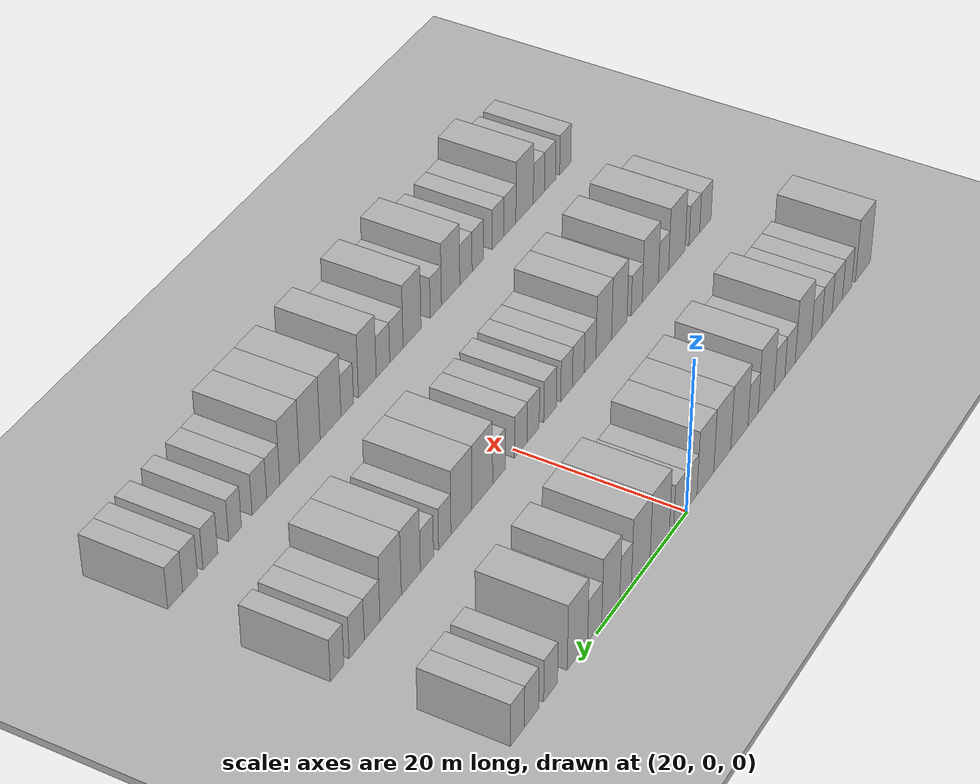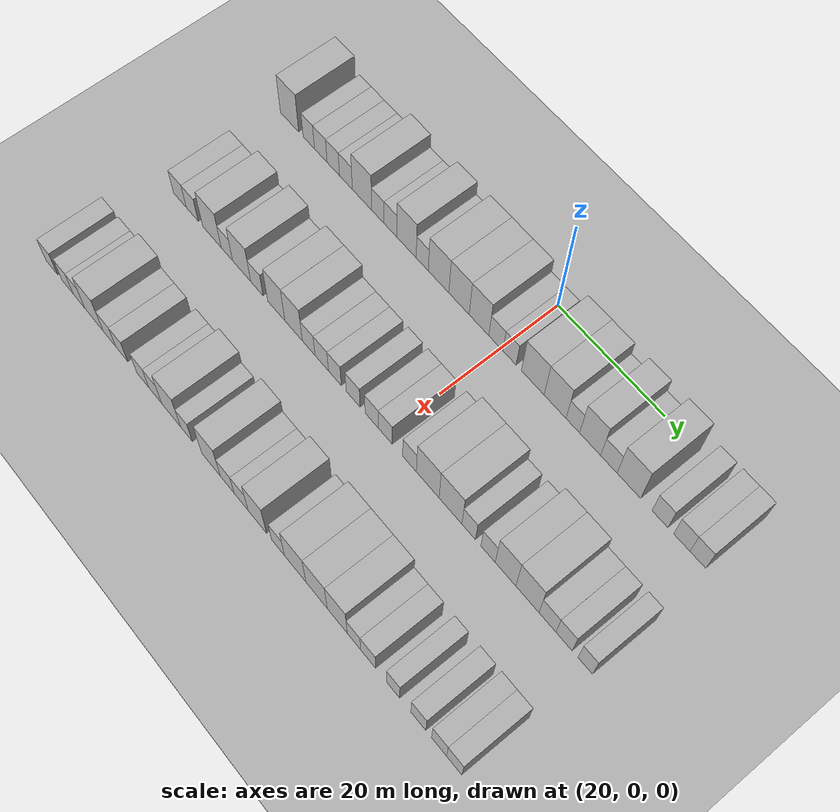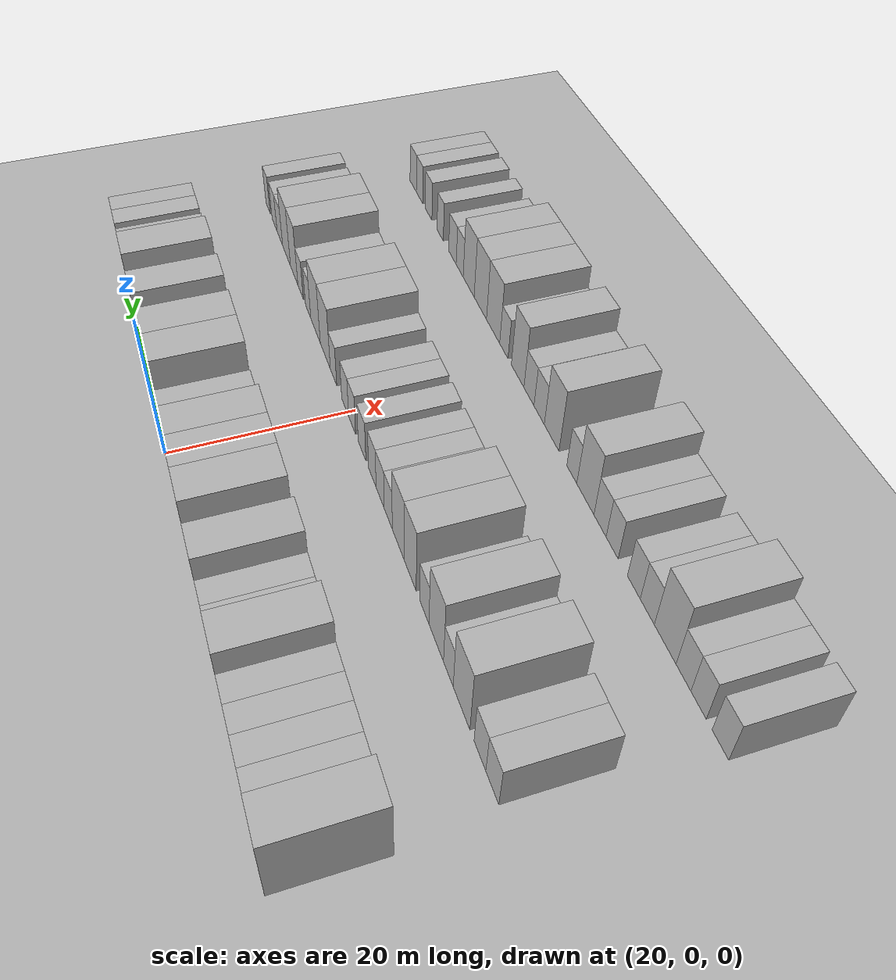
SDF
<sdf version="1.6">
 <world name="default">
  <include><name>ground_plane_1</name><uri>model://HANNAS_ground_plane</uri></include>
  <include>
   <name>ground_plane_2</name>
   <uri>model://HANNAS_ground_plane</uri>
   <pose>100 0 0  0 0 0</pose>
  </include>
  <model name="building_50">
   <static>1</static>
   <pose>25.0000 -44.3049 0 0.000000 0.000000 0.000000</pose>
   <link name="link">
    <pose>0 0 4.50 0 0 0</pose>
    <collision name="collision"><geometry><box><size>10.0000 4.1583 9.0000</size></box></geometry></collision>
    <visual name="visual">
     <cast_shadows>0</cast_shadows>
     <geometry><box><size>10.0000 4.1583 9.0000</size></box></geometry>
     <material>
      <script>
       <uri>model://HANNAS_wall/materials/scripts</uri>
       <uri>model://HANNAS_wall/materials/textures</uri>
       <name>vrc/HANNAS_wall</name>
      </script>
     </material>
    </visual>
   </link>
  </model>
  <model name="building_51">
   <static>1</static>
   <pose>25.0000 -39.9633 0 0.000000 0.000000 0.000000</pose>
   <link name="link">
    <pose>0 0 3.00 0 0 0</pose>
    <collision name="collision"><geometry><box><size>10.0000 2.5249 6.0000</size></box></geometry></collision>
    <visual name="visual">
     <cast_shadows>0</cast_shadows>
     <geometry><box><size>10.0000 2.5249 6.0000</size></box></geometry>
     <material>
      <script>
       <uri>model://HANNAS_wall/materials/scripts</uri>
       <uri>model://HANNAS_wall/materials/textures</uri>
       <name>vrc/HANNAS_wall</name>
      </script>
     </material>
    </visual>
   </link>
  </model>
  <model name="building_52">
   <static>1</static>
   <pose>25.0000 -37.3032 0 0.000000 0.000000 0.000000</pose>
   <link name="link">
    <pose>0 0 3.00 0 0 0</pose>
    <collision name="collision"><geometry><box><size>10.0000 2.7953 6.0000</size></box></geometry></collision>
    <visual name="visual">
     <cast_shadows>0</cast_shadows>
     <geometry><box><size>10.0000 2.7953 6.0000</size></box></geometry>
     <material>
      <script>
       <uri>model://HANNAS_wall/materials/scripts</uri>
       <uri>model://HANNAS_wall/materials/textures</uri>
       <name>vrc/HANNAS_wall</name>
      </script>
     </material>
    </visual>
   </link>
  </model>
  <model name="building_53">
   <static>1</static>
   <pose>25.0000 -34.5384 0 0.000000 0.000000 0.000000</pose>
   <link name="link">
    <pose>0 0 3.00 0 0 0</pose>
    <collision name="collision"><geometry><box><size>10.0000 2.7344 6.0000</size></box></geometry></collision>
    <visual name="visual">
     <cast_shadows>0</cast_shadows>
     <geometry><box><size>10.0000 2.7344 6.0000</size></box></geometry>
     <material>
      <script>
       <uri>model://HANNAS_wall/materials/scripts</uri>
       <uri>model://HANNAS_wall/materials/textures</uri>
       <name>vrc/HANNAS_wall</name>
      </script>
     </material>
    </visual>
   </link>
  </model>
  <model name="building_54">
   <static>1</static>
   <pose>25.0000 -31.7763 0 0.000000 0.000000 0.000000</pose>
   <link name="link">
    <pose>0 0 3.00 0 0 0</pose>
    <collision name="collision"><geometry><box><size>10.0000 2.7899 6.0000</size></box></geometry></collision>
    <visual name="visual">
     <cast_shadows>0</cast_shadows>
     <geometry><box><size>10.0000 2.7899 6.0000</size></box></geometry>
     <material>
      <script>
       <uri>model://HANNAS_wall/materials/scripts</uri>
       <uri>model://HANNAS_wall/materials/textures</uri>
       <name>vrc/HANNAS_wall</name>
      </script>
     </material>
    </visual>
   </link>
  </model>
  <model name="building_55">
   <static>1</static>
   <pose>25.0000 -28.2948 0 0.000000 0.000000 0.000000</pose>
   <link name="link">
    <pose>0 0 4.50 0 0 0</pose>
    <collision name="collision"><geometry><box><size>10.0000 4.1730 9.0000</size></box></geometry></collision>
    <visual name="visual">
     <cast_shadows>0</cast_shadows>
     <geometry><box><size>10.0000 4.1730 9.0000</size></box></geometry>
     <material>
      <script>
       <uri>model://HANNAS_wall/materials/scripts</uri>
       <uri>model://HANNAS_wall/materials/textures</uri>
       <name>vrc/HANNAS_wall</name>
      </script>
     </material>
    </visual>
   </link>
  </model>
  <model name="building_56">
   <static>1</static>
   <pose>25.0000 -24.8899 0 0.000000 0.000000 0.000000</pose>
   <link name="link">
    <pose>0 0 3.00 0 0 0</pose>
    <collision name="collision"><geometry><box><size>10.0000 2.6368 6.0000</size></box></geometry></collision>
    <visual name="visual">
     <cast_shadows>0</cast_shadows>
     <geometry><box><size>10.0000 2.6368 6.0000</size></box></geometry>
     <material>
      <script>
       <uri>model://HANNAS_wall/materials/scripts</uri>
       <uri>model://HANNAS_wall/materials/textures</uri>
       <name>vrc/HANNAS_wall</name>
      </script>
     </material>
    </visual>
   </link>
  </model>
  <model name="building_57">
   <static>1</static>
   <pose>25.0000 -22.2199 0 0.000000 0.000000 0.000000</pose>
   <link name="link">
    <pose>0 0 3.00 0 0 0</pose>
    <collision name="collision"><geometry><box><size>10.0000 2.7033 6.0000</size></box></geometry></collision>
    <visual name="visual">
     <cast_shadows>0</cast_shadows>
     <geometry><box><size>10.0000 2.7033 6.0000</size></box></geometry>
     <material>
      <script>
       <uri>model://HANNAS_wall/materials/scripts</uri>
       <uri>model://HANNAS_wall/materials/textures</uri>
       <name>vrc/HANNAS_wall</name>
      </script>
     </material>
    </visual>
   </link>
  </model>
  <model name="building_58">
   <static>1</static>
   <pose>25.0000 -18.8673 0 0.000000 0.000000 0.000000</pose>
   <link name="link">
    <pose>0 0 4.50 0 0 0</pose>
    <collision name="collision"><geometry><box><size>10.0000 4.0019 9.0000</size></box></geometry></collision>
    <visual name="visual">
     <cast_shadows>0</cast_shadows>
     <geometry><box><size>10.0000 4.0019 9.0000</size></box></geometry>
     <material>
      <script>
       <uri>model://HANNAS_wall/materials/scripts</uri>
       <uri>model://HANNAS_wall/materials/textures</uri>
       <name>vrc/HANNAS_wall</name>
      </script>
     </material>
    </visual>
   </link>
  </model>
  <model name="building_59">
   <static>1</static>
   <pose>25.0000 -15.6227 0 0.000000 0.000000 0.000000</pose>
   <link name="link">
    <pose>0 0 3.00 0 0 0</pose>
    <collision name="collision"><geometry><box><size>10.0000 2.4872 6.0000</size></box></geometry></collision>
    <visual name="visual">
     <cast_shadows>0</cast_shadows>
     <geometry><box><size>10.0000 2.4872 6.0000</size></box></geometry>
     <material>
      <script>
       <uri>model://HANNAS_wall/materials/scripts</uri>
       <uri>model://HANNAS_wall/materials/textures</uri>
       <name>vrc/HANNAS_wall</name>
      </script>
     </material>
    </visual>
   </link>
  </model>
  <model name="building_60">
   <static>1</static>
   <pose>25.0000 -12.2853 0 0.000000 0.000000 0.000000</pose>
   <link name="link">
    <pose>0 0 4.50 0 0 0</pose>
    <collision name="collision"><geometry><box><size>10.0000 4.1877 9.0000</size></box></geometry></collision>
    <visual name="visual">
     <cast_shadows>0</cast_shadows>
     <geometry><box><size>10.0000 4.1877 9.0000</size></box></geometry>
     <material>
      <script>
       <uri>model://HANNAS_wall/materials/scripts</uri>
       <uri>model://HANNAS_wall/materials/textures</uri>
       <name>vrc/HANNAS_wall</name>
      </script>
     </material>
    </visual>
   </link>
  </model>
  <model name="building_61">
   <static>1</static>
   <pose>25.0000 -8.1535 0 0.000000 0.000000 0.000000</pose>
   <link name="link">
    <pose>0 0 4.50 0 0 0</pose>
    <collision name="collision"><geometry><box><size>10.0000 4.0758 9.0000</size></box></geometry></collision>
    <visual name="visual">
     <cast_shadows>0</cast_shadows>
     <geometry><box><size>10.0000 4.0758 9.0000</size></box></geometry>
     <material>
      <script>
       <uri>model://HANNAS_wall/materials/scripts</uri>
       <uri>model://HANNAS_wall/materials/textures</uri>
       <name>vrc/HANNAS_wall</name>
      </script>
     </material>
    </visual>
   </link>
  </model>
  <model name="building_62">
   <static>1</static>
   <pose>25.0000 -4.1667 0 0.000000 0.000000 0.000000</pose>
   <link name="link">
    <pose>0 0 4.50 0 0 0</pose>
    <collision name="collision"><geometry><box><size>10.0000 3.8978 9.0000</size></box></geometry></collision>
    <visual name="visual">
     <cast_shadows>0</cast_shadows>
     <geometry><box><size>10.0000 3.8978 9.0000</size></box></geometry>
     <material>
      <script>
       <uri>model://HANNAS_wall/materials/scripts</uri>
       <uri>model://HANNAS_wall/materials/textures</uri>
       <name>vrc/HANNAS_wall</name>
      </script>
     </material>
    </visual>
   </link>
  </model>
  <model name="building_63">
   <static>1</static>
   <pose>25.0000 -0.8375 0 0.000000 0.000000 0.000000</pose>
   <link name="link">
    <pose>0 0 3.00 0 0 0</pose>
    <collision name="collision"><geometry><box><size>10.0000 2.7605 6.0000</size></box></geometry></collision>
    <visual name="visual">
     <cast_shadows>0</cast_shadows>
     <geometry><box><size>10.0000 2.7605 6.0000</size></box></geometry>
     <material>
      <script>
       <uri>model://HANNAS_wall/materials/scripts</uri>
       <uri>model://HANNAS_wall/materials/textures</uri>
       <name>vrc/HANNAS_wall</name>
      </script>
     </material>
    </visual>
   </link>
  </model>
  <model name="building_64">
   <static>1</static>
   <pose>25.0000 1.8266 0 0.000000 0.000000 0.000000</pose>
   <link name="link">
    <pose>0 0 3.00 0 0 0</pose>
    <collision name="collision"><geometry><box><size>10.0000 2.5677 6.0000</size></box></geometry></collision>
    <visual name="visual">
     <cast_shadows>0</cast_shadows>
     <geometry><box><size>10.0000 2.5677 6.0000</size></box></geometry>
     <material>
      <script>
       <uri>model://HANNAS_wall/materials/scripts</uri>
       <uri>model://HANNAS_wall/materials/textures</uri>
       <name>vrc/HANNAS_wall</name>
      </script>
     </material>
    </visual>
   </link>
  </model>
  <model name="building_65">
   <static>1</static>
   <pose>25.0000 6.2710 0 0.000000 0.000000 0.000000</pose>
   <link name="link">
    <pose>0 0 4.50 0 0 0</pose>
    <collision name="collision"><geometry><box><size>10.0000 4.3210 9.0000</size></box></geometry></collision>
    <visual name="visual">
     <cast_shadows>0</cast_shadows>
     <geometry><box><size>10.0000 4.3210 9.0000</size></box></geometry>
     <material>
      <script>
       <uri>model://HANNAS_wall/materials/scripts</uri>
       <uri>model://HANNAS_wall/materials/textures</uri>
       <name>vrc/HANNAS_wall</name>
      </script>
     </material>
    </visual>
   </link>
  </model>
  <model name="building_66">
   <static>1</static>
   <pose>25.0000 10.4872 0 0.000000 0.000000 0.000000</pose>
   <link name="link">
    <pose>0 0 4.50 0 0 0</pose>
    <collision name="collision"><geometry><box><size>10.0000 4.1115 9.0000</size></box></geometry></collision>
    <visual name="visual">
     <cast_shadows>0</cast_shadows>
     <geometry><box><size>10.0000 4.1115 9.0000</size></box></geometry>
     <material>
      <script>
       <uri>model://HANNAS_wall/materials/scripts</uri>
       <uri>model://HANNAS_wall/materials/textures</uri>
       <name>vrc/HANNAS_wall</name>
      </script>
     </material>
    </visual>
   </link>
  </model>
  <model name="building_67">
   <static>1</static>
   <pose>25.0000 13.7948 0 0.000000 0.000000 0.000000</pose>
   <link name="link">
    <pose>0 0 3.00 0 0 0</pose>
    <collision name="collision"><geometry><box><size>10.0000 2.5036 6.0000</size></box></geometry></collision>
    <visual name="visual">
     <cast_shadows>0</cast_shadows>
     <geometry><box><size>10.0000 2.5036 6.0000</size></box></geometry>
     <material>
      <script>
       <uri>model://HANNAS_wall/materials/scripts</uri>
       <uri>model://HANNAS_wall/materials/textures</uri>
       <name>vrc/HANNAS_wall</name>
      </script>
     </material>
    </visual>
   </link>
  </model>
  <model name="building_68">
   <static>1</static>
   <pose>25.0000 16.9805 0 0.000000 0.000000 0.000000</pose>
   <link name="link">
    <pose>0 0 4.50 0 0 0</pose>
    <collision name="collision"><geometry><box><size>10.0000 3.8678 9.0000</size></box></geometry></collision>
    <visual name="visual">
     <cast_shadows>0</cast_shadows>
     <geometry><box><size>10.0000 3.8678 9.0000</size></box></geometry>
     <material>
      <script>
       <uri>model://HANNAS_wall/materials/scripts</uri>
       <uri>model://HANNAS_wall/materials/textures</uri>
       <name>vrc/HANNAS_wall</name>
      </script>
     </material>
    </visual>
   </link>
  </model>
  <model name="building_69">
   <static>1</static>
   <pose>25.0000 20.4038 0 0.000000 0.000000 0.000000</pose>
   <link name="link">
    <pose>0 0 3.00 0 0 0</pose>
    <collision name="collision"><geometry><box><size>10.0000 2.9787 6.0000</size></box></geometry></collision>
    <visual name="visual">
     <cast_shadows>0</cast_shadows>
     <geometry><box><size>10.0000 2.9787 6.0000</size></box></geometry>
     <material>
      <script>
       <uri>model://HANNAS_wall/materials/scripts</uri>
       <uri>model://HANNAS_wall/materials/textures</uri>
       <name>vrc/HANNAS_wall</name>
      </script>
     </material>
    </visual>
   </link>
  </model>
  <model name="building_70">
   <static>1</static>
   <pose>25.0000 24.0017 0 0.000000 0.000000 0.000000</pose>
   <link name="link">
    <pose>0 0 4.50 0 0 0</pose>
    <collision name="collision"><geometry><box><size>10.0000 4.2171 9.0000</size></box></geometry></collision>
    <visual name="visual">
     <cast_shadows>0</cast_shadows>
     <geometry><box><size>10.0000 4.2171 9.0000</size></box></geometry>
     <material>
      <script>
       <uri>model://HANNAS_wall/materials/scripts</uri>
       <uri>model://HANNAS_wall/materials/textures</uri>
       <name>vrc/HANNAS_wall</name>
      </script>
     </material>
    </visual>
   </link>
  </model>
  <model name="building_71">
   <static>1</static>
   <pose>25.0000 29.5007 0 0.000000 0.000000 0.000000</pose>
   <link name="link">
    <pose>0 0 3.00 0 0 0</pose>
    <collision name="collision"><geometry><box><size>10.0000 2.7810 6.0000</size></box></geometry></collision>
    <visual name="visual">
     <cast_shadows>0</cast_shadows>
     <geometry><box><size>10.0000 2.7810 6.0000</size></box></geometry>
     <material>
      <script>
       <uri>model://HANNAS_wall/materials/scripts</uri>
       <uri>model://HANNAS_wall/materials/textures</uri>
       <name>vrc/HANNAS_wall</name>
      </script>
     </material>
    </visual>
   </link>
  </model>
  <model name="building_72">
   <static>1</static>
   <pose>25.0000 33.2955 0 0.000000 0.000000 0.000000</pose>
   <link name="link">
    <pose>0 0 3.00 0 0 0</pose>
    <collision name="collision"><geometry><box><size>10.0000 2.8086 6.0000</size></box></geometry></collision>
    <visual name="visual">
     <cast_shadows>0</cast_shadows>
     <geometry><box><size>10.0000 2.8086 6.0000</size></box></geometry>
     <material>
      <script>
       <uri>model://HANNAS_wall/materials/scripts</uri>
       <uri>model://HANNAS_wall/materials/textures</uri>
       <name>vrc/HANNAS_wall</name>
      </script>
     </material>
    </visual>
   </link>
  </model>
  <model name="building_73">
   <static>1</static>
   <pose>25.0000 36.0505 0 0.000000 0.000000 0.000000</pose>
   <link name="link">
    <pose>0 0 3.00 0 0 0</pose>
    <collision name="collision"><geometry><box><size>10.0000 2.7014 6.0000</size></box></geometry></collision>
    <visual name="visual">
     <cast_shadows>0</cast_shadows>
     <geometry><box><size>10.0000 2.7014 6.0000</size></box></geometry>
     <material>
      <script>
       <uri>model://HANNAS_wall/materials/scripts</uri>
       <uri>model://HANNAS_wall/materials/textures</uri>
       <name>vrc/HANNAS_wall</name>
      </script>
     </material>
    </visual>
   </link>
  </model>
  <model name="building_171">
   <static>1</static>
   <pose>44.0000 -43.5951 0 0.000000 0.000000 0.000000</pose>
   <link name="link">
    <pose>0 0 3.00 0 0 0</pose>
    <collision name="collision"><geometry><box><size>10.0000 2.9325 6.0000</size></box></geometry></collision>
    <visual name="visual">
     <cast_shadows>0</cast_shadows>
     <geometry><box><size>10.0000 2.9325 6.0000</size></box></geometry>
     <material>
      <script>
       <uri>model://HANNAS_wall/materials/scripts</uri>
       <uri>model://HANNAS_wall/materials/textures</uri>
       <name>vrc/HANNAS_wall</name>
      </script>
     </material>
    </visual>
   </link>
  </model>
  <model name="building_172">
   <static>1</static>
   <pose>44.0000 -40.7530 0 0.000000 0.000000 0.000000</pose>
   <link name="link">
    <pose>0 0 3.00 0 0 0</pose>
    <collision name="collision"><geometry><box><size>10.0000 2.7516 6.0000</size></box></geometry></collision>
    <visual name="visual">
     <cast_shadows>0</cast_shadows>
     <geometry><box><size>10.0000 2.7516 6.0000</size></box></geometry>
     <material>
      <script>
       <uri>model://HANNAS_wall/materials/scripts</uri>
       <uri>model://HANNAS_wall/materials/textures</uri>
       <name>vrc/HANNAS_wall</name>
      </script>
     </material>
    </visual>
   </link>
  </model>
  <model name="building_173">
   <static>1</static>
   <pose>44.0000 -36.2952 0 0.000000 0.000000 0.000000</pose>
   <link name="link">
    <pose>0 0 4.50 0 0 0</pose>
    <collision name="collision"><geometry><box><size>10.0000 4.1641 9.0000</size></box></geometry></collision>
    <visual name="visual">
     <cast_shadows>0</cast_shadows>
     <geometry><box><size>10.0000 4.1641 9.0000</size></box></geometry>
     <material>
      <script>
       <uri>model://HANNAS_wall/materials/scripts</uri>
       <uri>model://HANNAS_wall/materials/textures</uri>
       <name>vrc/HANNAS_wall</name>
      </script>
     </material>
    </visual>
   </link>
  </model>
  <model name="building_174">
   <static>1</static>
   <pose>44.0000 -32.9400 0 0.000000 0.000000 0.000000</pose>
   <link name="link">
    <pose>0 0 3.00 0 0 0</pose>
    <collision name="collision"><geometry><box><size>10.0000 2.5464 6.0000</size></box></geometry></collision>
    <visual name="visual">
     <cast_shadows>0</cast_shadows>
     <geometry><box><size>10.0000 2.5464 6.0000</size></box></geometry>
     <material>
      <script>
       <uri>model://HANNAS_wall/materials/scripts</uri>
       <uri>model://HANNAS_wall/materials/textures</uri>
       <name>vrc/HANNAS_wall</name>
      </script>
     </material>
    </visual>
   </link>
  </model>
  <model name="building_175">
   <static>1</static>
   <pose>44.0000 -29.6785 0 0.000000 0.000000 0.000000</pose>
   <link name="link">
    <pose>0 0 4.50 0 0 0</pose>
    <collision name="collision"><geometry><box><size>10.0000 3.9766 9.0000</size></box></geometry></collision>
    <visual name="visual">
     <cast_shadows>0</cast_shadows>
     <geometry><box><size>10.0000 3.9766 9.0000</size></box></geometry>
     <material>
      <script>
       <uri>model://HANNAS_wall/materials/scripts</uri>
       <uri>model://HANNAS_wall/materials/textures</uri>
       <name>vrc/HANNAS_wall</name>
      </script>
     </material>
    </visual>
   </link>
  </model>
  <model name="building_176">
   <static>1</static>
   <pose>44.0000 -26.3455 0 0.000000 0.000000 0.000000</pose>
   <link name="link">
    <pose>0 0 3.00 0 0 0</pose>
    <collision name="collision"><geometry><box><size>10.0000 2.6892 6.0000</size></box></geometry></collision>
    <visual name="visual">
     <cast_shadows>0</cast_shadows>
     <geometry><box><size>10.0000 2.6892 6.0000</size></box></geometry>
     <material>
      <script>
       <uri>model://HANNAS_wall/materials/scripts</uri>
       <uri>model://HANNAS_wall/materials/textures</uri>
       <name>vrc/HANNAS_wall</name>
      </script>
     </material>
    </visual>
   </link>
  </model>
  <model name="building_177">
   <static>1</static>
   <pose>44.0000 -22.1660 0 0.000000 0.000000 0.000000</pose>
   <link name="link">
    <pose>0 0 4.50 0 0 0</pose>
    <collision name="collision"><geometry><box><size>10.0000 3.6700 9.0000</size></box></geometry></collision>
    <visual name="visual">
     <cast_shadows>0</cast_shadows>
     <geometry><box><size>10.0000 3.6700 9.0000</size></box></geometry>
     <material>
      <script>
       <uri>model://HANNAS_wall/materials/scripts</uri>
       <uri>model://HANNAS_wall/materials/textures</uri>
       <name>vrc/HANNAS_wall</name>
      </script>
     </material>
    </visual>
   </link>
  </model>
  <model name="building_178">
   <static>1</static>
   <pose>44.0000 -18.4888 0 0.000000 0.000000 0.000000</pose>
   <link name="link">
    <pose>0 0 4.50 0 0 0</pose>
    <collision name="collision"><geometry><box><size>10.0000 3.6843 9.0000</size></box></geometry></collision>
    <visual name="visual">
     <cast_shadows>0</cast_shadows>
     <geometry><box><size>10.0000 3.6843 9.0000</size></box></geometry>
     <material>
      <script>
       <uri>model://HANNAS_wall/materials/scripts</uri>
       <uri>model://HANNAS_wall/materials/textures</uri>
       <name>vrc/HANNAS_wall</name>
      </script>
     </material>
    </visual>
   </link>
  </model>
  <model name="building_179">
   <static>1</static>
   <pose>44.0000 -15.3180 0 0.000000 0.000000 0.000000</pose>
   <link name="link">
    <pose>0 0 3.00 0 0 0</pose>
    <collision name="collision"><geometry><box><size>10.0000 2.6574 6.0000</size></box></geometry></collision>
    <visual name="visual">
     <cast_shadows>0</cast_shadows>
     <geometry><box><size>10.0000 2.6574 6.0000</size></box></geometry>
     <material>
      <script>
       <uri>model://HANNAS_wall/materials/scripts</uri>
       <uri>model://HANNAS_wall/materials/textures</uri>
       <name>vrc/HANNAS_wall</name>
      </script>
     </material>
    </visual>
   </link>
  </model>
  <model name="building_180">
   <static>1</static>
   <pose>44.0000 -12.6058 0 0.000000 0.000000 0.000000</pose>
   <link name="link">
    <pose>0 0 3.00 0 0 0</pose>
    <collision name="collision"><geometry><box><size>10.0000 2.7672 6.0000</size></box></geometry></collision>
    <visual name="visual">
     <cast_shadows>0</cast_shadows>
     <geometry><box><size>10.0000 2.7672 6.0000</size></box></geometry>
     <material>
      <script>
       <uri>model://HANNAS_wall/materials/scripts</uri>
       <uri>model://HANNAS_wall/materials/textures</uri>
       <name>vrc/HANNAS_wall</name>
      </script>
     </material>
    </visual>
   </link>
  </model>
  <model name="building_181">
   <static>1</static>
   <pose>44.0000 -9.9080 0 0.000000 0.000000 0.000000</pose>
   <link name="link">
    <pose>0 0 3.00 0 0 0</pose>
    <collision name="collision"><geometry><box><size>10.0000 2.6282 6.0000</size></box></geometry></collision>
    <visual name="visual">
     <cast_shadows>0</cast_shadows>
     <geometry><box><size>10.0000 2.6282 6.0000</size></box></geometry>
     <material>
      <script>
       <uri>model://HANNAS_wall/materials/scripts</uri>
       <uri>model://HANNAS_wall/materials/textures</uri>
       <name>vrc/HANNAS_wall</name>
      </script>
     </material>
    </visual>
   </link>
  </model>
  <model name="building_182">
   <static>1</static>
   <pose>44.0000 -6.1871 0 0.000000 0.000000 0.000000</pose>
   <link name="link">
    <pose>0 0 3.00 0 0 0</pose>
    <collision name="collision"><geometry><box><size>10.0000 2.8137 6.0000</size></box></geometry></collision>
    <visual name="visual">
     <cast_shadows>0</cast_shadows>
     <geometry><box><size>10.0000 2.8137 6.0000</size></box></geometry>
     <material>
      <script>
       <uri>model://HANNAS_wall/materials/scripts</uri>
       <uri>model://HANNAS_wall/materials/textures</uri>
       <name>vrc/HANNAS_wall</name>
      </script>
     </material>
    </visual>
   </link>
  </model>
  <model name="building_183">
   <static>1</static>
   <pose>44.0000 -2.4601 0 0.000000 0.000000 0.000000</pose>
   <link name="link">
    <pose>0 0 3.00 0 0 0</pose>
    <collision name="collision"><geometry><box><size>10.0000 2.6402 6.0000</size></box></geometry></collision>
    <visual name="visual">
     <cast_shadows>0</cast_shadows>
     <geometry><box><size>10.0000 2.6402 6.0000</size></box></geometry>
     <material>
      <script>
       <uri>model://HANNAS_wall/materials/scripts</uri>
       <uri>model://HANNAS_wall/materials/textures</uri>
       <name>vrc/HANNAS_wall</name>
      </script>
     </material>
    </visual>
   </link>
  </model>
  <model name="building_184">
   <static>1</static>
   <pose>44.0000 0.2383 0 0.000000 0.000000 0.000000</pose>
   <link name="link">
    <pose>0 0 3.00 0 0 0</pose>
    <collision name="collision"><geometry><box><size>10.0000 2.7567 6.0000</size></box></geometry></collision>
    <visual name="visual">
     <cast_shadows>0</cast_shadows>
     <geometry><box><size>10.0000 2.7567 6.0000</size></box></geometry>
     <material>
      <script>
       <uri>model://HANNAS_wall/materials/scripts</uri>
       <uri>model://HANNAS_wall/materials/textures</uri>
       <name>vrc/HANNAS_wall</name>
      </script>
     </material>
    </visual>
   </link>
  </model>
  <model name="building_185">
   <static>1</static>
   <pose>44.0000 4.9537 0 0.000000 0.000000 0.000000</pose>
   <link name="link">
    <pose>0 0 3.00 0 0 0</pose>
    <collision name="collision"><geometry><box><size>10.0000 2.6740 6.0000</size></box></geometry></collision>
    <visual name="visual">
     <cast_shadows>0</cast_shadows>
     <geometry><box><size>10.0000 2.6740 6.0000</size></box></geometry>
     <material>
      <script>
       <uri>model://HANNAS_wall/materials/scripts</uri>
       <uri>model://HANNAS_wall/materials/textures</uri>
       <name>vrc/HANNAS_wall</name>
      </script>
     </material>
    </visual>
   </link>
  </model>
  <model name="building_186">
   <static>1</static>
   <pose>44.0000 8.4610 0 0.000000 0.000000 0.000000</pose>
   <link name="link">
    <pose>0 0 4.50 0 0 0</pose>
    <collision name="collision"><geometry><box><size>10.0000 4.3406 9.0000</size></box></geometry></collision>
    <visual name="visual">
     <cast_shadows>0</cast_shadows>
     <geometry><box><size>10.0000 4.3406 9.0000</size></box></geometry>
     <material>
      <script>
       <uri>model://HANNAS_wall/materials/scripts</uri>
       <uri>model://HANNAS_wall/materials/textures</uri>
       <name>vrc/HANNAS_wall</name>
      </script>
     </material>
    </visual>
   </link>
  </model>
  <model name="building_187">
   <static>1</static>
   <pose>44.0000 12.7765 0 0.000000 0.000000 0.000000</pose>
   <link name="link">
    <pose>0 0 4.50 0 0 0</pose>
    <collision name="collision"><geometry><box><size>10.0000 4.2903 9.0000</size></box></geometry></collision>
    <visual name="visual">
     <cast_shadows>0</cast_shadows>
     <geometry><box><size>10.0000 4.2903 9.0000</size></box></geometry>
     <material>
      <script>
       <uri>model://HANNAS_wall/materials/scripts</uri>
       <uri>model://HANNAS_wall/materials/textures</uri>
       <name>vrc/HANNAS_wall</name>
      </script>
     </material>
    </visual>
   </link>
  </model>
  <model name="building_188">
   <static>1</static>
   <pose>44.0000 16.1845 0 0.000000 0.000000 0.000000</pose>
   <link name="link">
    <pose>0 0 3.00 0 0 0</pose>
    <collision name="collision"><geometry><box><size>10.0000 2.5258 6.0000</size></box></geometry></collision>
    <visual name="visual">
     <cast_shadows>0</cast_shadows>
     <geometry><box><size>10.0000 2.5258 6.0000</size></box></geometry>
     <material>
      <script>
       <uri>model://HANNAS_wall/materials/scripts</uri>
       <uri>model://HANNAS_wall/materials/textures</uri>
       <name>vrc/HANNAS_wall</name>
      </script>
     </material>
    </visual>
   </link>
  </model>
  <model name="building_189">
   <static>1</static>
   <pose>44.0000 19.7641 0 0.000000 0.000000 0.000000</pose>
   <link name="link">
    <pose>0 0 3.00 0 0 0</pose>
    <collision name="collision"><geometry><box><size>10.0000 2.6333 6.0000</size></box></geometry></collision>
    <visual name="visual">
     <cast_shadows>0</cast_shadows>
     <geometry><box><size>10.0000 2.6333 6.0000</size></box></geometry>
     <material>
      <script>
       <uri>model://HANNAS_wall/materials/scripts</uri>
       <uri>model://HANNAS_wall/materials/textures</uri>
       <name>vrc/HANNAS_wall</name>
      </script>
     </material>
    </visual>
   </link>
  </model>
  <model name="building_190">
   <static>1</static>
   <pose>44.0000 22.9483 0 0.000000 0.000000 0.000000</pose>
   <link name="link">
    <pose>0 0 4.50 0 0 0</pose>
    <collision name="collision"><geometry><box><size>10.0000 3.7351 9.0000</size></box></geometry></collision>
    <visual name="visual">
     <cast_shadows>0</cast_shadows>
     <geometry><box><size>10.0000 3.7351 9.0000</size></box></geometry>
     <material>
      <script>
       <uri>model://HANNAS_wall/materials/scripts</uri>
       <uri>model://HANNAS_wall/materials/textures</uri>
       <name>vrc/HANNAS_wall</name>
      </script>
     </material>
    </visual>
   </link>
  </model>
  <model name="building_191">
   <static>1</static>
   <pose>44.0000 26.8798 0 0.000000 0.000000 0.000000</pose>
   <link name="link">
    <pose>0 0 4.50 0 0 0</pose>
    <collision name="collision"><geometry><box><size>10.0000 4.1280 9.0000</size></box></geometry></collision>
    <visual name="visual">
     <cast_shadows>0</cast_shadows>
     <geometry><box><size>10.0000 4.1280 9.0000</size></box></geometry>
     <material>
      <script>
       <uri>model://HANNAS_wall/materials/scripts</uri>
       <uri>model://HANNAS_wall/materials/textures</uri>
       <name>vrc/HANNAS_wall</name>
      </script>
     </material>
    </visual>
   </link>
  </model>
  <model name="building_192">
   <static>1</static>
   <pose>44.0000 30.4403 0 0.000000 0.000000 0.000000</pose>
   <link name="link">
    <pose>0 0 3.00 0 0 0</pose>
    <collision name="collision"><geometry><box><size>10.0000 2.9930 6.0000</size></box></geometry></collision>
    <visual name="visual">
     <cast_shadows>0</cast_shadows>
     <geometry><box><size>10.0000 2.9930 6.0000</size></box></geometry>
     <material>
      <script>
       <uri>model://HANNAS_wall/materials/scripts</uri>
       <uri>model://HANNAS_wall/materials/textures</uri>
       <name>vrc/HANNAS_wall</name>
      </script>
     </material>
    </visual>
   </link>
  </model>
  <model name="building_193">
   <static>1</static>
   <pose>44.0000 33.3434 0 0.000000 0.000000 0.000000</pose>
   <link name="link">
    <pose>0 0 3.00 0 0 0</pose>
    <collision name="collision"><geometry><box><size>10.0000 2.8131 6.0000</size></box></geometry></collision>
    <visual name="visual">
     <cast_shadows>0</cast_shadows>
     <geometry><box><size>10.0000 2.8131 6.0000</size></box></geometry>
     <material>
      <script>
       <uri>model://HANNAS_wall/materials/scripts</uri>
       <uri>model://HANNAS_wall/materials/textures</uri>
       <name>vrc/HANNAS_wall</name>
      </script>
     </material>
    </visual>
   </link>
  </model>
  <model name="building_194">
   <static>1</static>
   <pose>44.0000 36.9976 0 0.000000 0.000000 0.000000</pose>
   <link name="link">
    <pose>0 0 3.00 0 0 0</pose>
    <collision name="collision"><geometry><box><size>10.0000 2.4953 6.0000</size></box></geometry></collision>
    <visual name="visual">
     <cast_shadows>0</cast_shadows>
     <geometry><box><size>10.0000 2.4953 6.0000</size></box></geometry>
     <material>
      <script>
       <uri>model://HANNAS_wall/materials/scripts</uri>
       <uri>model://HANNAS_wall/materials/textures</uri>
       <name>vrc/HANNAS_wall</name>
      </script>
     </material>
    </visual>
   </link>
  </model>
  <model name="building_293">
   <static>1</static>
   <pose>63.0000 -45.7517 0 0.000000 0.000000 0.000000</pose>
   <link name="link">
    <pose>0 0 3.00 0 0 0</pose>
    <collision name="collision"><geometry><box><size>10.0000 2.7909 6.0000</size></box></geometry></collision>
    <visual name="visual">
     <cast_shadows>0</cast_shadows>
     <geometry><box><size>10.0000 2.7909 6.0000</size></box></geometry>
     <material>
      <script>
       <uri>model://HANNAS_wall/materials/scripts</uri>
       <uri>model://HANNAS_wall/materials/textures</uri>
       <name>vrc/HANNAS_wall</name>
      </script>
     </material>
    </visual>
   </link>
  </model>
  <model name="building_294">
   <static>1</static>
   <pose>63.0000 -42.0041 0 0.000000 0.000000 0.000000</pose>
   <link name="link">
    <pose>0 0 3.00 0 0 0</pose>
    <collision name="collision"><geometry><box><size>10.0000 2.7043 6.0000</size></box></geometry></collision>
    <visual name="visual">
     <cast_shadows>0</cast_shadows>
     <geometry><box><size>10.0000 2.7043 6.0000</size></box></geometry>
     <material>
      <script>
       <uri>model://HANNAS_wall/materials/scripts</uri>
       <uri>model://HANNAS_wall/materials/textures</uri>
       <name>vrc/HANNAS_wall</name>
      </script>
     </material>
    </visual>
   </link>
  </model>
  <model name="building_295">
   <static>1</static>
   <pose>63.0000 -39.2902 0 0.000000 0.000000 0.000000</pose>
   <link name="link">
    <pose>0 0 3.00 0 0 0</pose>
    <collision name="collision"><geometry><box><size>10.0000 2.7236 6.0000</size></box></geometry></collision>
    <visual name="visual">
     <cast_shadows>0</cast_shadows>
     <geometry><box><size>10.0000 2.7236 6.0000</size></box></geometry>
     <material>
      <script>
       <uri>model://HANNAS_wall/materials/scripts</uri>
       <uri>model://HANNAS_wall/materials/textures</uri>
       <name>vrc/HANNAS_wall</name>
      </script>
     </material>
    </visual>
   </link>
  </model>
  <model name="building_296">
   <static>1</static>
   <pose>63.0000 -35.8428 0 0.000000 0.000000 0.000000</pose>
   <link name="link">
    <pose>0 0 4.50 0 0 0</pose>
    <collision name="collision"><geometry><box><size>10.0000 4.1711 9.0000</size></box></geometry></collision>
    <visual name="visual">
     <cast_shadows>0</cast_shadows>
     <geometry><box><size>10.0000 4.1711 9.0000</size></box></geometry>
     <material>
      <script>
       <uri>model://HANNAS_wall/materials/scripts</uri>
       <uri>model://HANNAS_wall/materials/textures</uri>
       <name>vrc/HANNAS_wall</name>
      </script>
     </material>
    </visual>
   </link>
  </model>
  <model name="building_297">
   <static>1</static>
   <pose>63.0000 -32.3379 0 0.000000 0.000000 0.000000</pose>
   <link name="link">
    <pose>0 0 3.00 0 0 0</pose>
    <collision name="collision"><geometry><box><size>10.0000 2.8387 6.0000</size></box></geometry></collision>
    <visual name="visual">
     <cast_shadows>0</cast_shadows>
     <geometry><box><size>10.0000 2.8387 6.0000</size></box></geometry>
     <material>
      <script>
       <uri>model://HANNAS_wall/materials/scripts</uri>
       <uri>model://HANNAS_wall/materials/textures</uri>
       <name>vrc/HANNAS_wall</name>
      </script>
     </material>
    </visual>
   </link>
  </model>
  <model name="building_298">
   <static>1</static>
   <pose>63.0000 -29.5827 0 0.000000 0.000000 0.000000</pose>
   <link name="link">
    <pose>0 0 3.00 0 0 0</pose>
    <collision name="collision"><geometry><box><size>10.0000 2.6716 6.0000</size></box></geometry></collision>
    <visual name="visual">
     <cast_shadows>0</cast_shadows>
     <geometry><box><size>10.0000 2.6716 6.0000</size></box></geometry>
     <material>
      <script>
       <uri>model://HANNAS_wall/materials/scripts</uri>
       <uri>model://HANNAS_wall/materials/textures</uri>
       <name>vrc/HANNAS_wall</name>
      </script>
     </material>
    </visual>
   </link>
  </model>
  <model name="building_299">
   <static>1</static>
   <pose>63.0000 -24.9155 0 0.000000 0.000000 0.000000</pose>
   <link name="link">
    <pose>0 0 3.00 0 0 0</pose>
    <collision name="collision"><geometry><box><size>10.0000 2.6628 6.0000</size></box></geometry></collision>
    <visual name="visual">
     <cast_shadows>0</cast_shadows>
     <geometry><box><size>10.0000 2.6628 6.0000</size></box></geometry>
     <material>
      <script>
       <uri>model://HANNAS_wall/materials/scripts</uri>
       <uri>model://HANNAS_wall/materials/textures</uri>
       <name>vrc/HANNAS_wall</name>
      </script>
     </material>
    </visual>
   </link>
  </model>
  <model name="building_300">
   <static>1</static>
   <pose>63.0000 -22.1874 0 0.000000 0.000000 0.000000</pose>
   <link name="link">
    <pose>0 0 3.00 0 0 0</pose>
    <collision name="collision"><geometry><box><size>10.0000 2.7934 6.0000</size></box></geometry></collision>
    <visual name="visual">
     <cast_shadows>0</cast_shadows>
     <geometry><box><size>10.0000 2.7934 6.0000</size></box></geometry>
     <material>
      <script>
       <uri>model://HANNAS_wall/materials/scripts</uri>
       <uri>model://HANNAS_wall/materials/textures</uri>
       <name>vrc/HANNAS_wall</name>
      </script>
     </material>
    </visual>
   </link>
  </model>
  <model name="building_301">
   <static>1</static>
   <pose>63.0000 -18.7382 0 0.000000 0.000000 0.000000</pose>
   <link name="link">
    <pose>0 0 4.50 0 0 0</pose>
    <collision name="collision"><geometry><box><size>10.0000 4.1049 9.0000</size></box></geometry></collision>
    <visual name="visual">
     <cast_shadows>0</cast_shadows>
     <geometry><box><size>10.0000 4.1049 9.0000</size></box></geometry>
     <material>
      <script>
       <uri>model://HANNAS_wall/materials/scripts</uri>
       <uri>model://HANNAS_wall/materials/textures</uri>
       <name>vrc/HANNAS_wall</name>
      </script>
     </material>
    </visual>
   </link>
  </model>
  <model name="building_302">
   <static>1</static>
   <pose>63.0000 -15.4500 0 0.000000 0.000000 0.000000</pose>
   <link name="link">
    <pose>0 0 3.00 0 0 0</pose>
    <collision name="collision"><geometry><box><size>10.0000 2.4716 6.0000</size></box></geometry></collision>
    <visual name="visual">
     <cast_shadows>0</cast_shadows>
     <geometry><box><size>10.0000 2.4716 6.0000</size></box></geometry>
     <material>
      <script>
       <uri>model://HANNAS_wall/materials/scripts</uri>
       <uri>model://HANNAS_wall/materials/textures</uri>
       <name>vrc/HANNAS_wall</name>
      </script>
     </material>
    </visual>
   </link>
  </model>
  <model name="building_303">
   <static>1</static>
   <pose>63.0000 -10.2735 0 0.000000 0.000000 0.000000</pose>
   <link name="link">
    <pose>0 0 4.50 0 0 0</pose>
    <collision name="collision"><geometry><box><size>10.0000 3.8814 9.0000</size></box></geometry></collision>
    <visual name="visual">
     <cast_shadows>0</cast_shadows>
     <geometry><box><size>10.0000 3.8814 9.0000</size></box></geometry>
     <material>
      <script>
       <uri>model://HANNAS_wall/materials/scripts</uri>
       <uri>model://HANNAS_wall/materials/textures</uri>
       <name>vrc/HANNAS_wall</name>
      </script>
     </material>
    </visual>
   </link>
  </model>
  <model name="building_304">
   <static>1</static>
   <pose>63.0000 -6.9154 0 0.000000 0.000000 0.000000</pose>
   <link name="link">
    <pose>0 0 3.00 0 0 0</pose>
    <collision name="collision"><geometry><box><size>10.0000 2.8348 6.0000</size></box></geometry></collision>
    <visual name="visual">
     <cast_shadows>0</cast_shadows>
     <geometry><box><size>10.0000 2.8348 6.0000</size></box></geometry>
     <material>
      <script>
       <uri>model://HANNAS_wall/materials/scripts</uri>
       <uri>model://HANNAS_wall/materials/textures</uri>
       <name>vrc/HANNAS_wall</name>
      </script>
     </material>
    </visual>
   </link>
  </model>
  <model name="building_305">
   <static>1</static>
   <pose>63.0000 -4.0774 0 0.000000 0.000000 0.000000</pose>
   <link name="link">
    <pose>0 0 3.00 0 0 0</pose>
    <collision name="collision"><geometry><box><size>10.0000 2.8413 6.0000</size></box></geometry></collision>
    <visual name="visual">
     <cast_shadows>0</cast_shadows>
     <geometry><box><size>10.0000 2.8413 6.0000</size></box></geometry>
     <material>
      <script>
       <uri>model://HANNAS_wall/materials/scripts</uri>
       <uri>model://HANNAS_wall/materials/textures</uri>
       <name>vrc/HANNAS_wall</name>
      </script>
     </material>
    </visual>
   </link>
  </model>
  <model name="building_306">
   <static>1</static>
   <pose>63.0000 -0.8051 0 0.000000 0.000000 0.000000</pose>
   <link name="link">
    <pose>0 0 4.50 0 0 0</pose>
    <collision name="collision"><geometry><box><size>10.0000 3.7032 9.0000</size></box></geometry></collision>
    <visual name="visual">
     <cast_shadows>0</cast_shadows>
     <geometry><box><size>10.0000 3.7032 9.0000</size></box></geometry>
     <material>
      <script>
       <uri>model://HANNAS_wall/materials/scripts</uri>
       <uri>model://HANNAS_wall/materials/textures</uri>
       <name>vrc/HANNAS_wall</name>
      </script>
     </material>
    </visual>
   </link>
  </model>
  <model name="building_307">
   <static>1</static>
   <pose>63.0000 3.3262 0 0.000000 0.000000 0.000000</pose>
   <link name="link">
    <pose>0 0 3.00 0 0 0</pose>
    <collision name="collision"><geometry><box><size>10.0000 2.5595 6.0000</size></box></geometry></collision>
    <visual name="visual">
     <cast_shadows>0</cast_shadows>
     <geometry><box><size>10.0000 2.5595 6.0000</size></box></geometry>
     <material>
      <script>
       <uri>model://HANNAS_wall/materials/scripts</uri>
       <uri>model://HANNAS_wall/materials/textures</uri>
       <name>vrc/HANNAS_wall</name>
      </script>
     </material>
    </visual>
   </link>
  </model>
  <model name="building_308">
   <static>1</static>
   <pose>63.0000 6.7065 0 0.000000 0.000000 0.000000</pose>
   <link name="link">
    <pose>0 0 4.50 0 0 0</pose>
    <collision name="collision"><geometry><box><size>10.0000 4.2010 9.0000</size></box></geometry></collision>
    <visual name="visual">
     <cast_shadows>0</cast_shadows>
     <geometry><box><size>10.0000 4.2010 9.0000</size></box></geometry>
     <material>
      <script>
       <uri>model://HANNAS_wall/materials/scripts</uri>
       <uri>model://HANNAS_wall/materials/textures</uri>
       <name>vrc/HANNAS_wall</name>
      </script>
     </material>
    </visual>
   </link>
  </model>
  <model name="building_309">
   <static>1</static>
   <pose>63.0000 10.8596 0 0.000000 0.000000 0.000000</pose>
   <link name="link">
    <pose>0 0 4.50 0 0 0</pose>
    <collision name="collision"><geometry><box><size>10.0000 4.1053 9.0000</size></box></geometry></collision>
    <visual name="visual">
     <cast_shadows>0</cast_shadows>
     <geometry><box><size>10.0000 4.1053 9.0000</size></box></geometry>
     <material>
      <script>
       <uri>model://HANNAS_wall/materials/scripts</uri>
       <uri>model://HANNAS_wall/materials/textures</uri>
       <name>vrc/HANNAS_wall</name>
      </script>
     </material>
    </visual>
   </link>
  </model>
  <model name="building_310">
   <static>1</static>
   <pose>63.0000 14.8155 0 0.000000 0.000000 0.000000</pose>
   <link name="link">
    <pose>0 0 4.50 0 0 0</pose>
    <collision name="collision"><geometry><box><size>10.0000 3.8064 9.0000</size></box></geometry></collision>
    <visual name="visual">
     <cast_shadows>0</cast_shadows>
     <geometry><box><size>10.0000 3.8064 9.0000</size></box></geometry>
     <material>
      <script>
       <uri>model://HANNAS_wall/materials/scripts</uri>
       <uri>model://HANNAS_wall/materials/textures</uri>
       <name>vrc/HANNAS_wall</name>
      </script>
     </material>
    </visual>
   </link>
  </model>
  <model name="building_311">
   <static>1</static>
   <pose>63.0000 17.9742 0 0.000000 0.000000 0.000000</pose>
   <link name="link">
    <pose>0 0 3.00 0 0 0</pose>
    <collision name="collision"><geometry><box><size>10.0000 2.5111 6.0000</size></box></geometry></collision>
    <visual name="visual">
     <cast_shadows>0</cast_shadows>
     <geometry><box><size>10.0000 2.5111 6.0000</size></box></geometry>
     <material>
      <script>
       <uri>model://HANNAS_wall/materials/scripts</uri>
       <uri>model://HANNAS_wall/materials/textures</uri>
       <name>vrc/HANNAS_wall</name>
      </script>
     </material>
    </visual>
   </link>
  </model>
  <model name="building_312">
   <static>1</static>
   <pose>63.0000 20.6141 0 0.000000 0.000000 0.000000</pose>
   <link name="link">
    <pose>0 0 3.00 0 0 0</pose>
    <collision name="collision"><geometry><box><size>10.0000 2.7686 6.0000</size></box></geometry></collision>
    <visual name="visual">
     <cast_shadows>0</cast_shadows>
     <geometry><box><size>10.0000 2.7686 6.0000</size></box></geometry>
     <material>
      <script>
       <uri>model://HANNAS_wall/materials/scripts</uri>
       <uri>model://HANNAS_wall/materials/textures</uri>
       <name>vrc/HANNAS_wall</name>
      </script>
     </material>
    </visual>
   </link>
  </model>
  <model name="building_313">
   <static>1</static>
   <pose>63.0000 25.2013 0 0.000000 0.000000 0.000000</pose>
   <link name="link">
    <pose>0 0 3.00 0 0 0</pose>
    <collision name="collision"><geometry><box><size>10.0000 2.4057 6.0000</size></box></geometry></collision>
    <visual name="visual">
     <cast_shadows>0</cast_shadows>
     <geometry><box><size>10.0000 2.4057 6.0000</size></box></geometry>
     <material>
      <script>
       <uri>model://HANNAS_wall/materials/scripts</uri>
       <uri>model://HANNAS_wall/materials/textures</uri>
       <name>vrc/HANNAS_wall</name>
      </script>
     </material>
    </visual>
   </link>
  </model>
  <model name="building_314">
   <static>1</static>
   <pose>63.0000 29.7457 0 0.000000 0.000000 0.000000</pose>
   <link name="link">
    <pose>0 0 3.00 0 0 0</pose>
    <collision name="collision"><geometry><box><size>10.0000 2.6832 6.0000</size></box></geometry></collision>
    <visual name="visual">
     <cast_shadows>0</cast_shadows>
     <geometry><box><size>10.0000 2.6832 6.0000</size></box></geometry>
     <material>
      <script>
       <uri>model://HANNAS_wall/materials/scripts</uri>
       <uri>model://HANNAS_wall/materials/textures</uri>
       <name>vrc/HANNAS_wall</name>
      </script>
     </material>
    </visual>
   </link>
  </model>
  <model name="building_315">
   <static>1</static>
   <pose>63.0000 33.4119 0 0.000000 0.000000 0.000000</pose>
   <link name="link">
    <pose>0 0 3.00 0 0 0</pose>
    <collision name="collision"><geometry><box><size>10.0000 2.6491 6.0000</size></box></geometry></collision>
    <visual name="visual">
     <cast_shadows>0</cast_shadows>
     <geometry><box><size>10.0000 2.6491 6.0000</size></box></geometry>
     <material>
      <script>
       <uri>model://HANNAS_wall/materials/scripts</uri>
       <uri>model://HANNAS_wall/materials/textures</uri>
       <name>vrc/HANNAS_wall</name>
      </script>
     </material>
    </visual>
   </link>
  </model>
  <model name="building_316">
   <static>1</static>
   <pose>63.0000 36.0660 0 0.000000 0.000000 0.000000</pose>
   <link name="link">
    <pose>0 0 3.00 0 0 0</pose>
    <collision name="collision"><geometry><box><size>10.0000 2.6592 6.0000</size></box></geometry></collision>
    <visual name="visual">
     <cast_shadows>0</cast_shadows>
     <geometry><box><size>10.0000 2.6592 6.0000</size></box></geometry>
     <material>
      <script>
       <uri>model://HANNAS_wall/materials/scripts</uri>
       <uri>model://HANNAS_wall/materials/textures</uri>
       <name>vrc/HANNAS_wall</name>
      </script>
     </material>
    </visual>
   </link>
  </model>
 </world>
</sdf>
